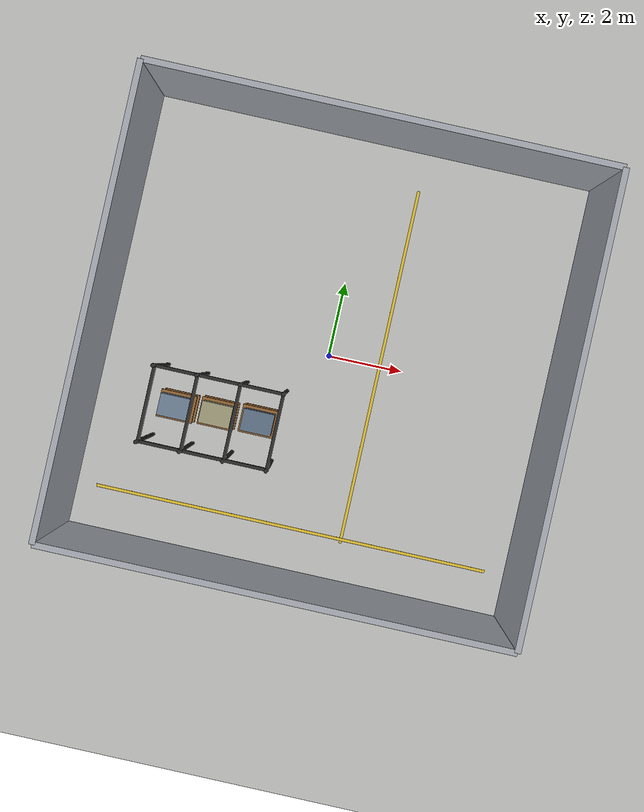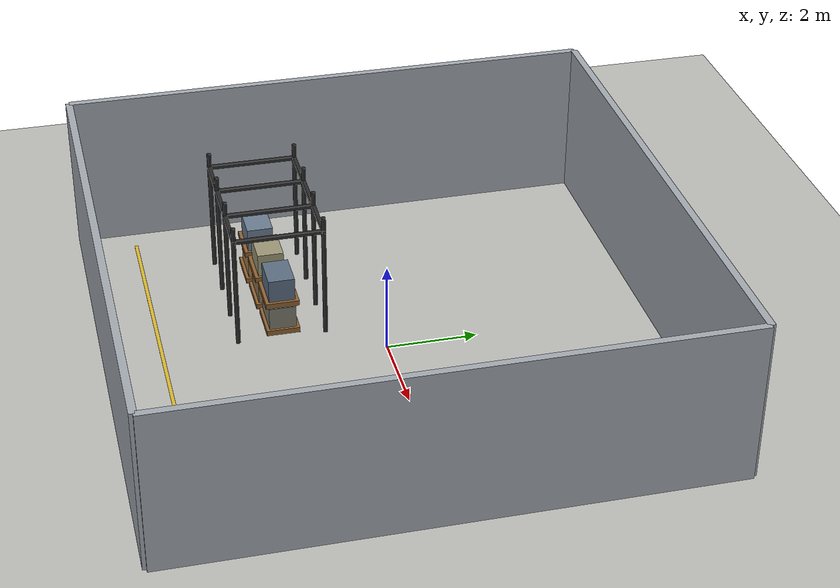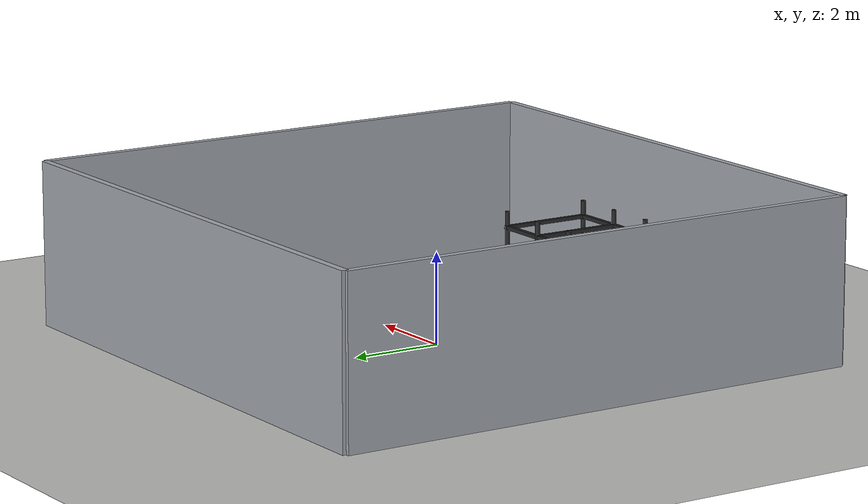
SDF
<?xml version="1.0" ?>
<sdf version="1.8">

  <world name="warehouse_occ_heavy">

    <physics name="default_physics" type="ode">
      <max_step_size>0.001</max_step_size>
      <real_time_factor>1.0</real_time_factor>
      <real_time_update_rate>1000</real_time_update_rate>
    </physics>

    <plugin name="gz::sim::systems::Physics"
            filename="gz-sim-physics-system"/>
    <plugin name="gz::sim::systems::UserCommands"
            filename="gz-sim-user-commands-system"/>
    <plugin name="gz::sim::systems::SceneBroadcaster"
            filename="gz-sim-scene-broadcaster-system"/>
    <plugin name="gz::sim::systems::Contact"
            filename="gz-sim-contact-system"/>
    <plugin name="gz::sim::systems::Sensors"
            filename="gz-sim-sensors-system">
      <render_engine>ogre2</render_engine>
    </plugin>

    <gravity>0 0 -9.81</gravity>
    <magnetic_field>6e-06 2.3e-05 -4.2e-05</magnetic_field>
    <atmosphere type="adiabatic"/>

    <scene>
      <ambient>0.34 0.34 0.34 1</ambient>
      <background>0.68 0.68 0.68 1</background>
      <shadows>true</shadows>
    </scene>

    <model name="ground_plane">
      <static>true</static>
      <link name="link">
        <collision name="collision">
          <geometry>
            <plane>
              <normal>0 0 1</normal>
              <size>12 12</size>
            </plane>
          </geometry>
        </collision>
        <visual name="visual">
          <geometry>
            <plane>
              <normal>0 0 1</normal>
              <size>12 12</size>
            </plane>
          </geometry>
          <material>
            <ambient>0.73 0.73 0.72 1</ambient>
            <diffuse>0.73 0.73 0.72 1</diffuse>
            <specular>0.08 0.08 0.08 1</specular>
          </material>
        </visual>
      </link>
    </model>

    <model name="warehouse_walls">
      <static>true</static>

      <link name="wall_x_pos">
        <pose>6 0 1.8 0 0 0</pose>
        <collision name="collision">
          <geometry>
            <box>
              <size>0.16 12 3.6</size>
            </box>
          </geometry>
        </collision>
        <visual name="visual">
          <geometry>
            <box>
              <size>0.16 12 3.6</size>
            </box>
          </geometry>
          <material>
            <ambient>0.64 0.66 0.69 1.0</ambient>
            <diffuse>0.64 0.66 0.69 1.0</diffuse>
            <specular>0.04 0.04 0.04 1.0</specular>
          </material>
        </visual>
      </link>

      <link name="wall_x_neg">
        <pose>-6 0 1.8 0 0 0</pose>
        <collision name="collision">
          <geometry>
            <box>
              <size>0.16 12 3.6</size>
            </box>
          </geometry>
        </collision>
        <visual name="visual">
          <geometry>
            <box>
              <size>0.16 12 3.6</size>
            </box>
          </geometry>
          <material>
            <ambient>0.64 0.66 0.69 1.0</ambient>
            <diffuse>0.64 0.66 0.69 1.0</diffuse>
            <specular>0.04 0.04 0.04 1.0</specular>
          </material>
        </visual>
      </link>

      <link name="wall_y_pos">
        <pose>0 6 1.8 0 0 0</pose>
        <collision name="collision">
          <geometry>
            <box>
              <size>12 0.16 3.6</size>
            </box>
          </geometry>
        </collision>
        <visual name="visual">
          <geometry>
            <box>
              <size>12 0.16 3.6</size>
            </box>
          </geometry>
          <material>
            <ambient>0.64 0.66 0.69 1.0</ambient>
            <diffuse>0.64 0.66 0.69 1.0</diffuse>
            <specular>0.04 0.04 0.04 1.0</specular>
          </material>
        </visual>
      </link>

      <link name="wall_y_neg">
        <pose>0 -6 1.8 0 0 0</pose>
        <collision name="collision">
          <geometry>
            <box>
              <size>12 0.16 3.6</size>
            </box>
          </geometry>
        </collision>
        <visual name="visual">
          <geometry>
            <box>
              <size>12 0.16 3.6</size>
            </box>
          </geometry>
          <material>
            <ambient>0.64 0.66 0.69 1.0</ambient>
            <diffuse>0.64 0.66 0.69 1.0</diffuse>
            <specular>0.04 0.04 0.04 1.0</specular>
          </material>
        </visual>
      </link>
    </model>

    <model name="warehouse_markings">
      <static>true</static>

      <link name="bottom_lane">
        <pose>0 -4.8 0.002 0 0 0</pose>
        <visual name="visual">
          <geometry>
            <box>
              <size>10.8 0.08 0.002</size>
            </box>
          </geometry>
          <material>
            <ambient>0.85 0.72 0.18 1.0</ambient>
            <diffuse>0.85 0.72 0.18 1.0</diffuse>
          </material>
        </visual>
      </link>

      <link name="cross_lane">
        <pose>1.4 0 0.002 0 0 1.5708</pose>
        <visual name="visual">
          <geometry>
            <box>
              <size>9.8 0.08 0.002</size>
            </box>
          </geometry>
          <material>
            <ambient>0.85 0.72 0.18 1.0</ambient>
            <diffuse>0.85 0.72 0.18 1.0</diffuse>
          </material>
        </visual>
      </link>
    </model>

    <model name="warehouse_rack_occluders">
      <static>true</static>

      <link name="upright_sw">
        <pose>-4.20 -3.12 1.45 0 0 0</pose>
        <visual name="visual">
          <geometry>
            <cylinder>
              <radius>0.05</radius>
              <length>2.90</length>
            </cylinder>
          </geometry>
          <material>
            <ambient>0.16 0.16 0.16 1.0</ambient>
            <diffuse>0.16 0.16 0.16 1.0</diffuse>
            <specular>0.02 0.02 0.02 1.0</specular>
          </material>
        </visual>
      </link>

      <link name="upright_s1">
        <pose>-3.10 -3.12 1.45 0 0 0</pose>
        <visual name="visual">
          <geometry>
            <cylinder>
              <radius>0.05</radius>
              <length>2.90</length>
            </cylinder>
          </geometry>
          <material>
            <ambient>0.16 0.16 0.16 1.0</ambient>
            <diffuse>0.16 0.16 0.16 1.0</diffuse>
            <specular>0.02 0.02 0.02 1.0</specular>
          </material>
        </visual>
      </link>

      <link name="upright_s2">
        <pose>-2.00 -3.12 1.45 0 0 0</pose>
        <visual name="visual">
          <geometry>
            <cylinder>
              <radius>0.05</radius>
              <length>2.90</length>
            </cylinder>
          </geometry>
          <material>
            <ambient>0.16 0.16 0.16 1.0</ambient>
            <diffuse>0.16 0.16 0.16 1.0</diffuse>
            <specular>0.02 0.02 0.02 1.0</specular>
          </material>
        </visual>
      </link>

      <link name="upright_se">
        <pose>-0.90 -3.12 1.45 0 0 0</pose>
        <visual name="visual">
          <geometry>
            <cylinder>
              <radius>0.05</radius>
              <length>2.90</length>
            </cylinder>
          </geometry>
          <material>
            <ambient>0.16 0.16 0.16 1.0</ambient>
            <diffuse>0.16 0.16 0.16 1.0</diffuse>
            <specular>0.02 0.02 0.02 1.0</specular>
          </material>
        </visual>
      </link>

      <link name="upright_nw">
        <pose>-4.20 -1.18 1.45 0 0 0</pose>
        <visual name="visual">
          <geometry>
            <cylinder>
              <radius>0.05</radius>
              <length>2.90</length>
            </cylinder>
          </geometry>
          <material>
            <ambient>0.16 0.16 0.16 1.0</ambient>
            <diffuse>0.16 0.16 0.16 1.0</diffuse>
            <specular>0.02 0.02 0.02 1.0</specular>
          </material>
        </visual>
      </link>

      <link name="upright_n1">
        <pose>-3.10 -1.18 1.45 0 0 0</pose>
        <visual name="visual">
          <geometry>
            <cylinder>
              <radius>0.05</radius>
              <length>2.90</length>
            </cylinder>
          </geometry>
          <material>
            <ambient>0.16 0.16 0.16 1.0</ambient>
            <diffuse>0.16 0.16 0.16 1.0</diffuse>
            <specular>0.02 0.02 0.02 1.0</specular>
          </material>
        </visual>
      </link>

      <link name="upright_n2">
        <pose>-2.00 -1.18 1.45 0 0 0</pose>
        <visual name="visual">
          <geometry>
            <cylinder>
              <radius>0.05</radius>
              <length>2.90</length>
            </cylinder>
          </geometry>
          <material>
            <ambient>0.16 0.16 0.16 1.0</ambient>
            <diffuse>0.16 0.16 0.16 1.0</diffuse>
            <specular>0.02 0.02 0.02 1.0</specular>
          </material>
        </visual>
      </link>

      <link name="upright_ne">
        <pose>-0.90 -1.18 1.45 0 0 0</pose>
        <visual name="visual">
          <geometry>
            <cylinder>
              <radius>0.05</radius>
              <length>2.90</length>
            </cylinder>
          </geometry>
          <material>
            <ambient>0.16 0.16 0.16 1.0</ambient>
            <diffuse>0.16 0.16 0.16 1.0</diffuse>
            <specular>0.02 0.02 0.02 1.0</specular>
          </material>
        </visual>
      </link>

      <link name="beam_south_upper">
        <pose>-2.55 -3.12 2.56 0 0 0</pose>
        <visual name="visual">
          <geometry>
            <box>
              <size>3.40 0.08 0.08</size>
            </box>
          </geometry>
          <material>
            <ambient>0.16 0.16 0.16 1.0</ambient>
            <diffuse>0.16 0.16 0.16 1.0</diffuse>
            <specular>0.02 0.02 0.02 1.0</specular>
          </material>
        </visual>
      </link>

      <link name="beam_north_upper">
        <pose>-2.55 -1.18 2.56 0 0 0</pose>
        <visual name="visual">
          <geometry>
            <box>
              <size>3.40 0.08 0.08</size>
            </box>
          </geometry>
          <material>
            <ambient>0.16 0.16 0.16 1.0</ambient>
            <diffuse>0.16 0.16 0.16 1.0</diffuse>
            <specular>0.02 0.02 0.02 1.0</specular>
          </material>
        </visual>
      </link>

      <link name="beam_west_upper">
        <pose>-4.20 -2.15 2.56 0 0 1.5708</pose>
        <visual name="visual">
          <geometry>
            <box>
              <size>1.98 0.08 0.08</size>
            </box>
          </geometry>
          <material>
            <ambient>0.16 0.16 0.16 1.0</ambient>
            <diffuse>0.16 0.16 0.16 1.0</diffuse>
            <specular>0.02 0.02 0.02 1.0</specular>
          </material>
        </visual>
      </link>

      <link name="beam_mid_west_upper">
        <pose>-3.10 -2.15 2.56 0 0 1.5708</pose>
        <visual name="visual">
          <geometry>
            <box>
              <size>1.98 0.08 0.08</size>
            </box>
          </geometry>
          <material>
            <ambient>0.16 0.16 0.16 1.0</ambient>
            <diffuse>0.16 0.16 0.16 1.0</diffuse>
            <specular>0.02 0.02 0.02 1.0</specular>
          </material>
        </visual>
      </link>

      <link name="beam_mid_east_upper">
        <pose>-2.00 -2.15 2.56 0 0 1.5708</pose>
        <visual name="visual">
          <geometry>
            <box>
              <size>1.98 0.08 0.08</size>
            </box>
          </geometry>
          <material>
            <ambient>0.16 0.16 0.16 1.0</ambient>
            <diffuse>0.16 0.16 0.16 1.0</diffuse>
            <specular>0.02 0.02 0.02 1.0</specular>
          </material>
        </visual>
      </link>

      <link name="beam_east_upper">
        <pose>-0.90 -2.15 2.56 0 0 1.5708</pose>
        <visual name="visual">
          <geometry>
            <box>
              <size>1.98 0.08 0.08</size>
            </box>
          </geometry>
          <material>
            <ambient>0.16 0.16 0.16 1.0</ambient>
            <diffuse>0.16 0.16 0.16 1.0</diffuse>
            <specular>0.02 0.02 0.02 1.0</specular>
          </material>
        </visual>
      </link>

      <link name="pallet_west_lower">
        <pose>-3.65 -2.18 0.08 0 0 0</pose>
        <visual name="visual">
          <geometry>
            <box>
              <size>0.96 0.74 0.12</size>
            </box>
          </geometry>
          <material>
            <ambient>0.56 0.38 0.19 1.0</ambient>
            <diffuse>0.56 0.38 0.19 1.0</diffuse>
            <specular>0.03 0.03 0.03 1.0</specular>
          </material>
        </visual>
      </link>

      <link name="load_west_lower">
        <pose>-3.65 -2.18 0.40 0 0 0</pose>
        <visual name="visual">
          <geometry>
            <box>
              <size>0.84 0.60 0.52</size>
            </box>
          </geometry>
          <material>
            <ambient>0.63 0.49 0.31 1.0</ambient>
            <diffuse>0.63 0.49 0.31 1.0</diffuse>
            <specular>0.02 0.02 0.02 1.0</specular>
          </material>
        </visual>
      </link>

      <link name="pallet_west_upper">
        <pose>-3.65 -2.18 0.78 0 0 0</pose>
        <visual name="visual">
          <geometry>
            <box>
              <size>0.96 0.74 0.12</size>
            </box>
          </geometry>
          <material>
            <ambient>0.56 0.38 0.19 1.0</ambient>
            <diffuse>0.56 0.38 0.19 1.0</diffuse>
            <specular>0.03 0.03 0.03 1.0</specular>
          </material>
        </visual>
      </link>

      <link name="load_west_upper">
        <pose>-3.65 -2.18 1.10 0 0 0</pose>
        <visual name="visual">
          <geometry>
            <box>
              <size>0.82 0.58 0.52</size>
            </box>
          </geometry>
          <material>
            <ambient>0.42 0.49 0.57 1.0</ambient>
            <diffuse>0.42 0.49 0.57 1.0</diffuse>
            <specular>0.02 0.02 0.02 1.0</specular>
          </material>
        </visual>
      </link>

      <link name="pallet_center_lower">
        <pose>-2.55 -2.14 0.08 0 0 0</pose>
        <visual name="visual">
          <geometry>
            <box>
              <size>0.96 0.74 0.12</size>
            </box>
          </geometry>
          <material>
            <ambient>0.56 0.38 0.19 1.0</ambient>
            <diffuse>0.56 0.38 0.19 1.0</diffuse>
            <specular>0.03 0.03 0.03 1.0</specular>
          </material>
        </visual>
      </link>

      <link name="load_center_lower">
        <pose>-2.55 -2.14 0.40 0 0 0</pose>
        <visual name="visual">
          <geometry>
            <box>
              <size>0.84 0.60 0.52</size>
            </box>
          </geometry>
          <material>
            <ambient>0.54 0.46 0.32 1.0</ambient>
            <diffuse>0.54 0.46 0.32 1.0</diffuse>
            <specular>0.02 0.02 0.02 1.0</specular>
          </material>
        </visual>
      </link>

      <link name="pallet_center_upper">
        <pose>-2.55 -2.14 0.78 0 0 0</pose>
        <visual name="visual">
          <geometry>
            <box>
              <size>0.96 0.74 0.12</size>
            </box>
          </geometry>
          <material>
            <ambient>0.56 0.38 0.19 1.0</ambient>
            <diffuse>0.56 0.38 0.19 1.0</diffuse>
            <specular>0.03 0.03 0.03 1.0</specular>
          </material>
        </visual>
      </link>

      <link name="load_center_upper">
        <pose>-2.55 -2.14 1.10 0 0 0</pose>
        <visual name="visual">
          <geometry>
            <box>
              <size>0.82 0.58 0.52</size>
            </box>
          </geometry>
          <material>
            <ambient>0.61 0.59 0.46 1.0</ambient>
            <diffuse>0.61 0.59 0.46 1.0</diffuse>
            <specular>0.02 0.02 0.02 1.0</specular>
          </material>
        </visual>
      </link>

      <link name="pallet_east_lower">
        <pose>-1.45 -2.10 0.08 0 0 0</pose>
        <visual name="visual">
          <geometry>
            <box>
              <size>0.96 0.74 0.12</size>
            </box>
          </geometry>
          <material>
            <ambient>0.56 0.38 0.19 1.0</ambient>
            <diffuse>0.56 0.38 0.19 1.0</diffuse>
            <specular>0.03 0.03 0.03 1.0</specular>
          </material>
        </visual>
      </link>

      <link name="load_east_lower">
        <pose>-1.45 -2.10 0.40 0 0 0</pose>
        <visual name="visual">
          <geometry>
            <box>
              <size>0.84 0.60 0.52</size>
            </box>
          </geometry>
          <material>
            <ambient>0.48 0.48 0.43 1.0</ambient>
            <diffuse>0.48 0.48 0.43 1.0</diffuse>
            <specular>0.02 0.02 0.02 1.0</specular>
          </material>
        </visual>
      </link>

      <link name="pallet_east_upper">
        <pose>-1.45 -2.10 0.78 0 0 0</pose>
        <visual name="visual">
          <geometry>
            <box>
              <size>0.96 0.74 0.12</size>
            </box>
          </geometry>
          <material>
            <ambient>0.56 0.38 0.19 1.0</ambient>
            <diffuse>0.56 0.38 0.19 1.0</diffuse>
            <specular>0.03 0.03 0.03 1.0</specular>
          </material>
        </visual>
      </link>

      <link name="load_east_upper">
        <pose>-1.45 -2.10 1.10 0 0 0</pose>
        <visual name="visual">
          <geometry>
            <box>
              <size>0.82 0.58 0.52</size>
            </box>
          </geometry>
          <material>
            <ambient>0.36 0.43 0.51 1.0</ambient>
            <diffuse>0.36 0.43 0.51 1.0</diffuse>
            <specular>0.02 0.02 0.02 1.0</specular>
          </material>
        </visual>
      </link>
    </model>

    <include>
      <uri>model://external_camera</uri>
      <pose>-5.35 -5.20 3.05 0 0.56 0.7854</pose>
    </include>

    <light name="sun" type="directional">
      <pose>0 0 10 0 0 0</pose>
      <cast_shadows>true</cast_shadows>
      <intensity>1.0</intensity>
      <direction>-0.55 0.15 -0.82</direction>
    </light>

  </world>
</sdf>

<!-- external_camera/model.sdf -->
<sdf version="1.6">
  <model name="external_camera">
    <static>true</static>
    <pose>0 0 0 0 0 0</pose>
    <link name="link">
      <sensor name="camera" type="camera">
        <camera>
          <horizontal_fov>1.5708</horizontal_fov> <!-- 90 degrees -->
          <image>
            <width>1280</width>
            <height>720</height>
          </image>
          <clip>
            <near>0.1</near>
            <far>100</far>
          </clip>
        </camera>
        <always_on>1</always_on>
        <update_rate>5</update_rate>
        <visualize>false</visualize>
        <topic>external_camera/image_raw</topic>
      </sensor>
      <sensor name="depth_camera" type="depth_camera">
        <camera>
          <horizontal_fov>1.5708</horizontal_fov>
          <image><width>1280</width><height>720</height><format>R_FLOAT32</format></image>
          <clip><near>0.1</near><far>100</far></clip>
        </camera>
        <always_on>0</always_on>
        <update_rate>5</update_rate>
        <visualize>false</visualize>
        <topic>external_camera/depth</topic>
      </sensor>
      <sensor name="segmentation_camera" type="segmentation">
        <camera>
          <segmentation_type>semantic</segmentation_type>
          <horizontal_fov>1.5708</horizontal_fov>
          <image>
            <width>1280</width>
            <height>720</height>
          </image>
          <clip>
            <near>0.1</near>
            <far>100</far>
          </clip>
        </camera>
        <always_on>0</always_on>
        <update_rate>1</update_rate>
        <visualize>false</visualize>
        <topic>external_camera/segmentation</topic>
      </sensor>
    </link>
  </model>
</sdf>
